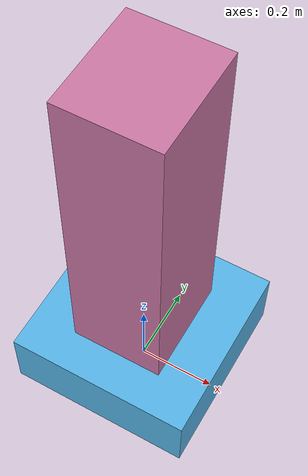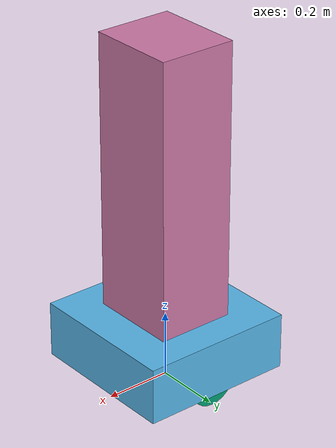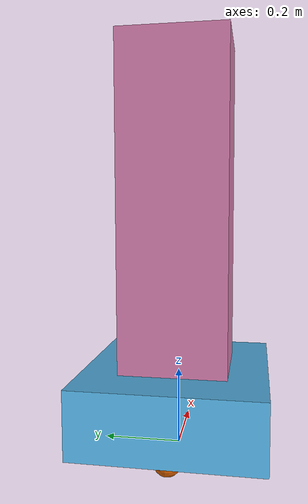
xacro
<?xml version="1.0"?>
<robot xmlns:xacro="http://www.ros.org/wiki/xacro" name="novera_one">
 <xacro:arg name="wheel_radius" default="0.076"/><xacro:arg name="track" default="0.382"/>
 <xacro:property name="radius" value="$(arg wheel_radius)"/><xacro:property name="track" value="$(arg track)"/>
 <xacro:macro name="inertia" params="mass ix iy iz"><inertial><mass value="${mass}"/><inertia ixx="${ix}" ixy="0" ixz="0" iyy="${iy}" iyz="0" izz="${iz}"/></inertial></xacro:macro>
 <link name="base_footprint"/><joint name="base_fixed" type="fixed"><parent link="base_footprint"/><child link="base_link"/><origin xyz="0 0 0.13"/></joint>
 <link name="base_link"><xacro:inertia mass="30" ix="2.5" iy="2.5" iz="1.2"/><visual><geometry><box size="0.468 0.468 0.17"/></geometry></visual><collision><geometry><box size="0.468 0.468 0.17"/></geometry></collision></link>
 <xacro:macro name="wheel" params="side sign"><link name="${side}_wheel"><xacro:inertia mass="1" ix="0.002" iy="0.003" iz="0.002"/><visual><origin rpy="1.570796 0 0"/><geometry><cylinder radius="${radius}" length="0.042"/></geometry></visual><collision><origin rpy="1.570796 0 0"/><geometry><cylinder radius="${radius}" length="0.042"/></geometry></collision></link><joint name="${side}_wheel_joint" type="continuous"><parent link="base_link"/><child link="${side}_wheel"/><origin xyz="0 ${sign*track/2} ${radius-0.13}"/><axis xyz="0 1 0"/></joint></xacro:macro>
 <xacro:wheel side="left" sign="1"/><xacro:wheel side="right" sign="-1"/>
 <xacro:macro name="caster" params="name x"><link name="${name}"><xacro:inertia mass="0.5" ix="0.001" iy="0.001" iz="0.001"/><visual><geometry><sphere radius="0.035"/></geometry></visual><collision><geometry><sphere radius="0.035"/></geometry></collision></link><joint name="${name}_fixed" type="fixed"><parent link="base_link"/><child link="${name}"/><origin xyz="${x} 0 -0.095"/></joint><gazebo reference="${name}"><mu1>0.01</mu1><mu2>0.01</mu2></gazebo></xacro:macro><xacro:caster name="front_caster" x="0.173"/><xacro:caster name="rear_caster" x="-0.173"/>
 <link name="body"><xacro:inertia mass="3" ix="0.18" iy="0.18" iz="0.03"/><visual><geometry><box size="0.235 0.272 0.875"/></geometry></visual><collision><geometry><box size="0.235 0.272 0.875"/></geometry></collision></link><joint name="body_fixed" type="fixed"><parent link="base_link"/><child link="body"/><origin xyz="0 0 0.4825"/></joint>
 <link name="laser_frame"/><joint name="laser_fixed" type="fixed"><parent link="base_link"/><child link="laser_frame"/><origin xyz="0.18 0 0.16"/></joint>
 <gazebo reference="laser_frame"><sensor name="lidar" type="gpu_lidar"><topic>scan</topic><update_rate>10</update_rate><gz_frame_id>laser_frame</gz_frame_id><lidar><scan><horizontal><samples>360</samples><resolution>1</resolution><min_angle>-3.14159</min_angle><max_angle>3.14159</max_angle></horizontal></scan><range><min>0.1</min><max>10</max><resolution>0.01</resolution></range></lidar></sensor></gazebo>
 <link name="imu_link"/><joint name="imu_fixed" type="fixed"><parent link="base_link"/><child link="imu_link"/></joint><gazebo reference="imu_link"><sensor name="imu" type="imu"><topic>imu</topic><update_rate>50</update_rate><gz_frame_id>imu_link</gz_frame_id></sensor></gazebo>
 <link name="camera_link"/><joint name="camera_fixed" type="fixed"><parent link="base_link"/><child link="camera_link"/><origin xyz="0.13 0 0.75"/></joint><gazebo reference="camera_link"><sensor name="rgbd" type="rgbd_camera"><topic>camera</topic><update_rate>15</update_rate><camera><horizontal_fov>1.047</horizontal_fov><image><width>640</width><height>480</height><format>R8G8B8</format></image><clip><near>0.1</near><far>8</far></clip></camera></sensor></gazebo>
 <gazebo><plugin filename="gz-sim-diff-drive-system" name="gz::sim::systems::DiffDrive"><left_joint>left_wheel_joint</left_joint><right_joint>right_wheel_joint</right_joint><wheel_separation>${track}</wheel_separation><wheel_radius>${radius}</wheel_radius><topic>cmd_vel</topic><odom_topic>odom</odom_topic><tf_topic>tf</tf_topic><frame_id>odom</frame_id><child_frame_id>base_footprint</child_frame_id><max_linear_velocity>0.25</max_linear_velocity><max_angular_velocity>0.6</max_angular_velocity></plugin><plugin filename="gz-sim-joint-state-publisher-system" name="gz::sim::systems::JointStatePublisher"><topic>joint_states</topic></plugin></gazebo>
</robot>
